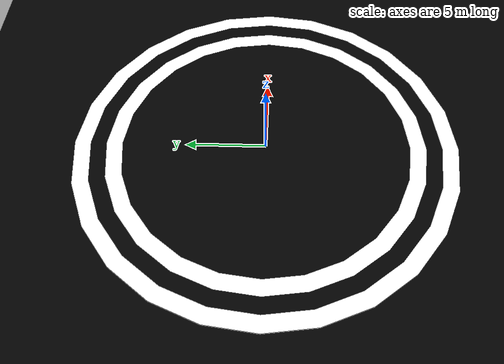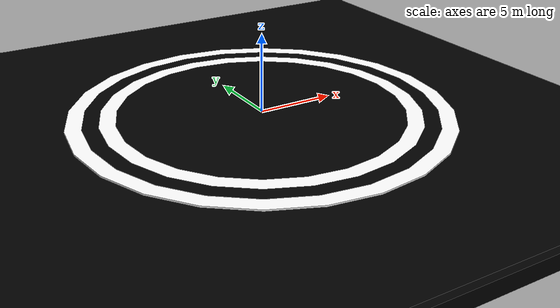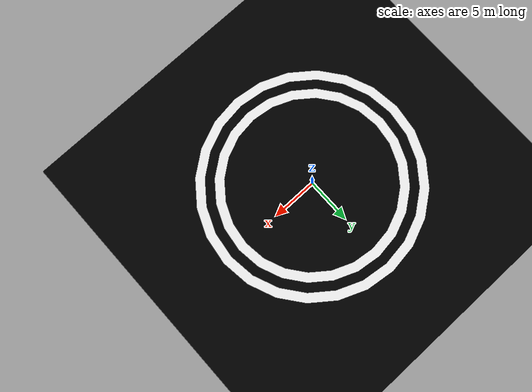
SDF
<sdf version="1.8">
 <world name="circular_track_world">
  <physics name="1ms" type="ignored">
   <max_step_size>0.001</max_step_size>
   <real_time_factor>1</real_time_factor>
  </physics>
  <plugin filename="gz-sim-physics-system" name="gz::sim::systems::Physics"/>
  <plugin filename="gz-sim-user-commands-system" name="gz::sim::systems::UserCommands"/>
  <plugin filename="gz-sim-scene-broadcaster-system" name="gz::sim::systems::SceneBroadcaster"/>
  <plugin filename="gz-sim-sensors-system" name="gz::sim::systems::Sensors">
   <render_engine>ogre2</render_engine>
  </plugin>
  <plugin filename="gz-sim-imu-system" name="gz::sim::systems::Imu"/>
  <model name="ground_plane">
   <static>true</static>
   <link name="link">
    <collision name="collision">
     <geometry><plane><normal>0 0 1</normal><size>200 200</size></plane></geometry>
    </collision>
    <visual name="visual">
     <geometry><plane><normal>0 0 1</normal><size>200 200</size></plane></geometry>
     <material><ambient>0 0 0 1</ambient><diffuse>0 0 0 1</diffuse></material>
    </visual>
   </link>
  </model>
  <model name="outer_circle">
   <static>true</static>
   <link name="link">
    <collision name="collision">
     <geometry><cylinder><radius>12</radius><length>0.10</length></cylinder></geometry>
    </collision>
    <visual name="visual">
     <geometry><cylinder><radius>12</radius><length>0.1</length></cylinder></geometry>
     <material><ambient>1 1 1 1</ambient><diffuse>1 1 1 1</diffuse></material>
    </visual>
    <pose>0 0 0.01 0 0 0</pose>
   </link>
  </model>
  <model name="inner_circle">
   <static>true</static>
   <link name="link">
    <collision name="collision">
     <geometry><cylinder><radius>9</radius><length>0.1</length></cylinder></geometry>
    </collision>
    <visual name="visual">
     <geometry><cylinder><radius>9</radius><length>0.1</length></cylinder></geometry>
     <material><ambient>0 0 0 1</ambient><diffuse>0 0 0 1</diffuse></material>
    </visual>
    <pose>0 0 0.023 0 0 0</pose>
   </link>
  </model>
  <model name="middle_circle">
   <static>true</static>
   <link name="link">
    <collision name="collision">
     <geometry><cylinder><radius>10</radius><length>0.1</length></cylinder></geometry>
    </collision>
    <visual name="visual">
     <geometry><cylinder><radius>10</radius><length>0.1</length></cylinder></geometry>
     <material><ambient>1 1 1 1</ambient><diffuse>1 1 1 1</diffuse></material>
    </visual>
    <pose>0 0 0.021 0 0 0</pose>
   </link>
  </model>
  <model name="path_circle">
   <static>true</static>
   <link name="link">
    <collision name="collision">
     <geometry><cylinder><radius>11</radius><length>0.1</length></cylinder></geometry>
    </collision>
    <visual name="visual">
     <geometry><cylinder><radius>11</radius><length>0.1</length></cylinder></geometry>
     <material><ambient>0 0 0 1</ambient><diffuse>0 0 0 1</diffuse></material>
    </visual>
    <pose>0 0 0.02 0 0 0</pose>
   </link>
  </model>
  <model name="outer_boundary">
   <static>true</static>
   <link name="link">
    <collision name="collision"><geometry><box><size>1000 1000 1</size></box></geometry></collision>
    <visual name="visual">
     <geometry><box><size>1000 1000 1</size></box></geometry>
     <material><ambient>0 0 0 0</ambient><diffuse>0 0 0 0</diffuse></material>
    </visual>
    <pose>0 0 -1 0 0 0</pose>
   </link>
  </model>
  <light name="sun" type="directional">
   <pose>0 0 20 0 0 0</pose>
   <intensity>1</intensity>
   <direction>-0.5 0.1 -0.9</direction>
   <diffuse>0.8 0.8 0.8 1</diffuse>
   <specular>0.2 0.2 0.2 1</specular>
  </light>
 </world>
</sdf>
